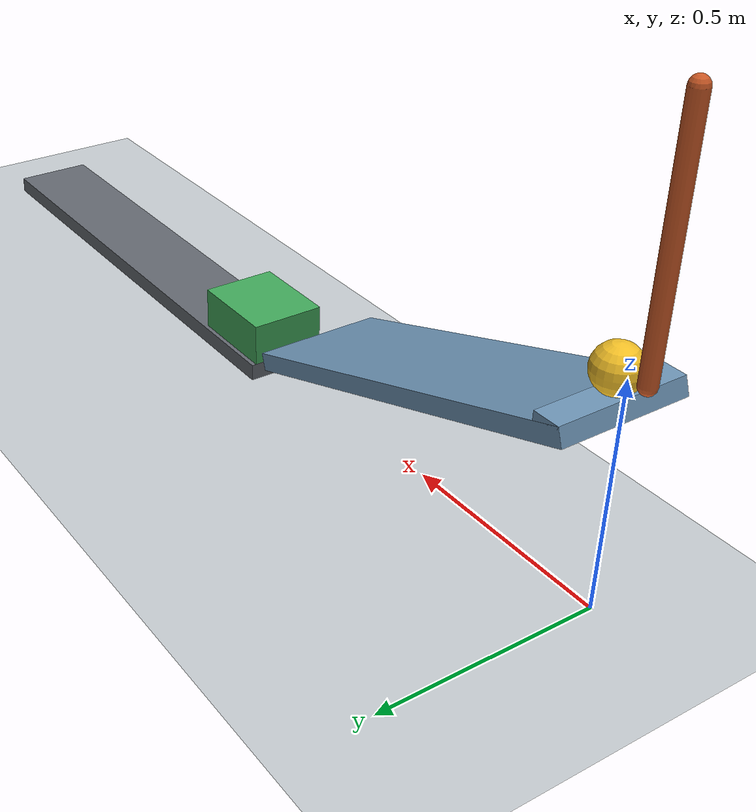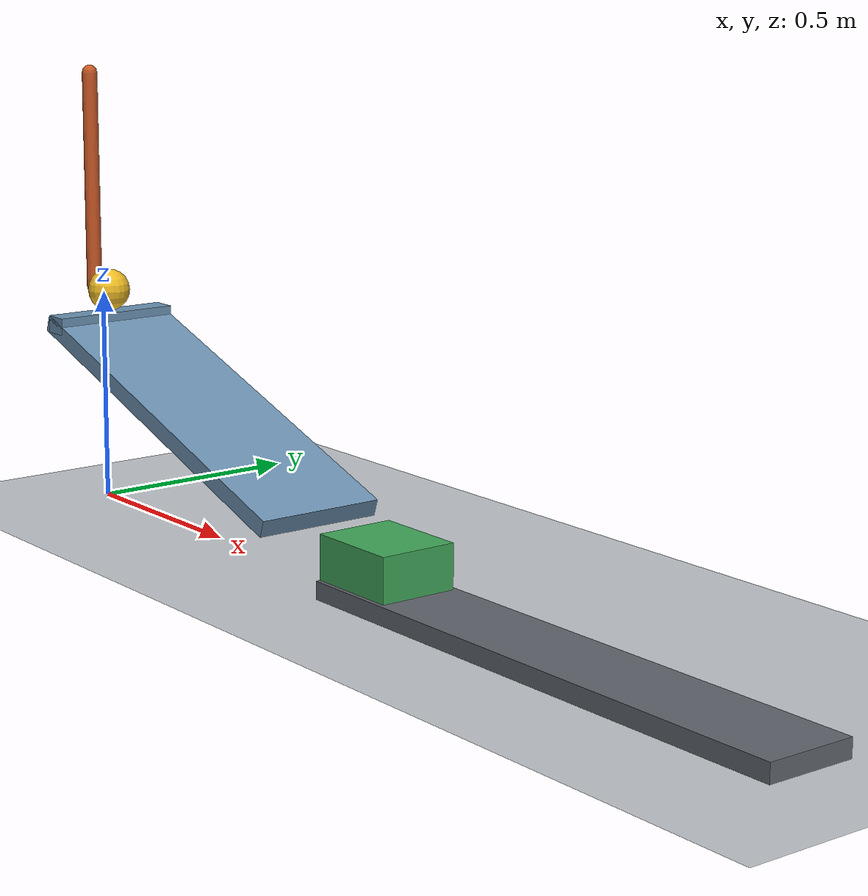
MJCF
<mujoco model="pendulum_ball_ramp_cart">
  <compiler angle="degree" autolimits="true"/>
  <option timestep="0.002" gravity="0 0 -9.81" integrator="implicitfast" solver="Newton" iterations="100" cone="elliptic"/>
  <size njmax="200" nconmax="100"/>

  <visual>
    <headlight ambient="0.35 0.35 0.35" diffuse="0.7 0.7 0.7" specular="0.2 0.2 0.2"/>
  </visual>

  <!-- Sliding friction is 0.68. The other friction entries are torsional and rolling resistance. -->
  <!-- Rolling resistance allows ball1 to settle rather than roll indefinitely on the floor. -->
  <!-- solref damping ratio 0.6901067 approximates restitution 0.05. -->

  <worldbody>
    <light name="scene_light" pos="0.5 -1.5 3" dir="0 0 -1" directional="true"/>
    <camera name="overview" pos="0.65 -3 1.65" xyaxes="1 0 0 0 0.35 0.9367497"/>

    <geom name="floor" type="plane" pos="0 0 0" size="5 3 0.1" friction="0.68 0.005 0.006" condim="6" solref="0.004 0.6901067" solimp="0.95 0.95 0.001 0.5 2" rgba="0.76 0.78 0.80 1"/>

    <!-- The main top face is 0.95 m long, 0.30 m wide, and slopes down toward +x at 19 degrees. -->
    <!-- Its high edge is (0, 0, 0.4592897467); its low edge is (0.8982426468, 0, 0.15). -->
    <body name="ramp1" pos="0 0 0">
      <geom name="ramp1_slope" type="box" pos="0.4426099603 0 0.2857345019" euler="0 19 0" size="0.475 0.15 0.02" friction="0.68 0.005 0.006" condim="6" solref="0.004 0.6901067" solimp="0.95 0.95 0.001 0.5 2" rgba="0.42 0.57 0.70 1"/>
      <!-- A small level launch seat within the high-end footprint holds the ball until struck. -->
      <geom name="ramp1_launch_seat" type="box" pos="0.03 0 0.4392897467" size="0.03 0.15 0.02" friction="0.68 0.005 0.006" condim="6" solref="0.004 0.6901067" solimp="0.95 0.95 0.001 0.5 2" rgba="0.42 0.57 0.70 1"/>
    </body>

    <!-- The capsule's complete pivot-to-bottom length is 0.55 m; its total mass is 0.40 kg. -->
    <!-- Positive hinge angle places it left of vertical; gravity swings it toward ball1. -->
    <!-- This swing is clockwise when viewed from the +y side. -->
    <body name="pendulum1" pos="-0.043 0 1.0412897467">
      <joint name="pendulum1_hinge" type="hinge" pos="0 0 0" axis="0 1 0" damping="0.04"/>
      <geom name="pendulum1_rod" type="capsule" fromto="0 0 -0.018 0 0 -0.532" size="0.018" mass="0.40" friction="0.68 0.005 0.006" condim="6" solref="0.004 0.6901067" solimp="0.95 0.95 0.001 0.5 2" rgba="0.80 0.35 0.15 1"/>
    </body>

    <body name="ball1" pos="0.025 0 0.5092897467">
      <freejoint name="ball1_free"/>
      <geom name="ball1_sphere" type="sphere" size="0.05" mass="0.20" friction="0.68 0.005 0.006" condim="6" solref="0.004 0.6901067" solimp="0.95 0.95 0.001 0.5 2" rgba="0.95 0.75 0.15 1"/>
    </body>

    <!-- The cart's initial near face is x=1.0182426468: exactly 0.12 m beyond the ramp's low edge. -->
    <!-- Its guide elevates the bottom to z=0.04, placing the front upper edge in the ball's flight path. -->
    <body name="cart1" pos="1.1282426468 0 0.09">
      <!-- Dry guide resistance equals 0.68 * 0.50 * 9.81; slide damping is 0.20 N s/m. -->
      <joint name="cart1_slide" type="slide" axis="1 0 0" damping="0.20" frictionloss="3.3354" limited="true" range="0 0.9"/>
      <geom name="cart1_chassis" type="box" size="0.11 0.09 0.05" mass="0.50" friction="0.68 0.005 0.006" condim="6" solref="0.004 0.6901067" solimp="0.95 0.95 0.001 0.5 2" rgba="0.25 0.65 0.35 1"/>
    </body>

    <body name="cart1_guide" pos="1.6682426468 0 0.02">
      <geom name="cart1_guide_surface" type="box" size="0.65 0.10 0.02" friction="0.68 0.005 0.006" condim="6" solref="0.004 0.6901067" solimp="0.95 0.95 0.001 0.5 2" rgba="0.38 0.40 0.43 1"/>
    </body>
  </worldbody>

  <keyframe>
    <!-- qpos order: pendulum hinge, ball position/quaternion, cart slide. All velocities are zero. -->
    <key name="start" qpos="0.9599310886 0.025 0 0.5092897467 1 0 0 0 0" qvel="0 0 0 0 0 0 0 0"/>
  </keyframe>
</mujoco>
